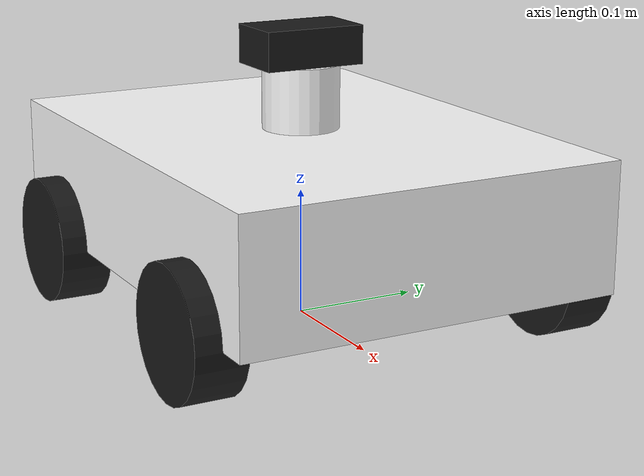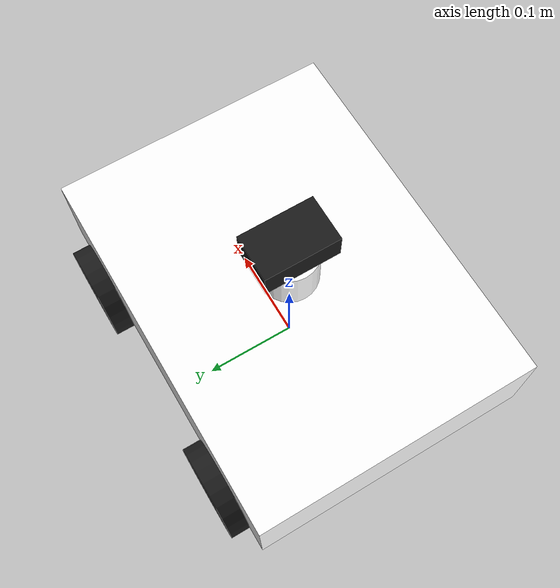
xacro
<?xml version="1.0"?>
<robot xmlns:xacro="http://www.ros.org/wiki/xacro" name="shooter">

  <!-- Parameters -->
  <xacro:arg name="use_sim" default="false"/>
  <xacro:arg name="usb_port" default="USB0"/>
  <xacro:property name="use_sim" value="$(arg use_sim)"/>
  <xacro:property name="usb_port" value="$(arg usb_port)"/>

  <!-- Properties -->
  <xacro:property name="wheel_radius" value="0.05"/>
  <xacro:property name="wheel_width" value="0.04"/>
  <xacro:property name="wheel_separation" value="0.3"/>
  <xacro:property name="wheelbase" value="0.25"/>
  <xacro:property name="base_length" value="0.4"/>
  <xacro:property name="base_width" value="0.3"/>
  <xacro:property name="base_height" value="0.1"/>

  <!-- Materials -->
  <material name="white">
    <color rgba="1 1 1 1"/>
  </material>
  <material name="black">
    <color rgba="0.1 0.1 0.1 1"/>
  </material>

  <!-- Base Link -->
  <link name="base_link"/>

  <link name="base_footprint"/>

  <joint name="base_footprint_joint" type="fixed">
    <parent link="base_footprint"/>
    <child link="base_link"/>
    <origin xyz="0 0 ${wheel_radius}" rpy="0 0 0"/>
  </joint>

  <!-- Chassis -->
  <link name="chassis">
    <visual>
      <geometry>
        <box size="${base_length} ${base_width} ${base_height}"/>
      </geometry>
      <material name="white"/>
    </visual>
    <collision>
      <geometry>
        <box size="${base_length} ${base_width} ${base_height}"/>
      </geometry>
    </collision>
    <inertial>
      <mass value="5.0"/>
      <inertia ixx="0.05" ixy="0" ixz="0" iyy="0.05" iyz="0" izz="0.05"/>
    </inertial>
  </link>

  <joint name="chassis_joint" type="fixed">
    <parent link="base_link"/>
    <child link="chassis"/>
    <origin xyz="0 0 ${base_height/2}" rpy="0 0 0"/>
  </joint>

  <!-- Wheel Macro -->
  <xacro:macro name="wheel" params="name">
    <link name="${name}">
      <visual>
        <geometry>
          <cylinder radius="${wheel_radius}" length="${wheel_width}"/>
        </geometry>
        <material name="black"/>
      </visual>
      <collision>
        <geometry>
          <cylinder radius="${wheel_radius}" length="${wheel_width}"/>
        </geometry>
      </collision>
      <inertial>
        <mass value="0.5"/>
        <inertia ixx="0.001" ixy="0" ixz="0" iyy="0.001" iyz="0" izz="0.001"/>
      </inertial>
    </link>
  </xacro:macro>

  <!-- Front Left Wheel -->
  <xacro:wheel name="front_left_wheel"/>
  <joint name="front_left_wheel_joint" type="continuous">
    <parent link="base_link"/>
    <child link="front_left_wheel"/>
    <origin xyz="${wheelbase/2} ${wheel_separation/2} 0" rpy="${-pi/2} 0 0"/>
    <axis xyz="0 0 1"/>
  </joint>

  <!-- Rear Left Wheel -->
  <xacro:wheel name="rear_left_wheel"/>
  <joint name="rear_left_wheel_joint" type="continuous">
    <parent link="base_link"/>
    <child link="rear_left_wheel"/>
    <origin xyz="${-wheelbase/2} ${wheel_separation/2} 0" rpy="${-pi/2} 0 0"/>
    <axis xyz="0 0 1"/>
  </joint>

  <!-- Front Right Wheel -->
  <xacro:wheel name="front_right_wheel"/>
  <joint name="front_right_wheel_joint" type="continuous">
    <parent link="base_link"/>
    <child link="front_right_wheel"/>
    <origin xyz="${wheelbase/2} ${-wheel_separation/2} 0" rpy="${-pi/2} 0 0"/>
    <axis xyz="0 0 1"/>
  </joint>

  <!-- Rear Right Wheel -->
  <xacro:wheel name="rear_right_wheel"/>
  <joint name="rear_right_wheel_joint" type="continuous">
    <parent link="base_link"/>
    <child link="rear_right_wheel"/>
    <origin xyz="${-wheelbase/2} ${-wheel_separation/2} 0" rpy="${-pi/2} 0 0"/>
    <axis xyz="0 0 1"/>
  </joint>

  <!-- Pan-Tilt Mechanism -->
  <link name="pan_link">
    <visual>
      <geometry>
        <cylinder radius="0.03" length="0.05"/>
      </geometry>
      <material name="white"/>
    </visual>
    <collision>
      <geometry>
        <cylinder radius="0.03" length="0.05"/>
      </geometry>
    </collision>
    <inertial>
      <mass value="0.2"/>
      <inertia ixx="0.0001" ixy="0" ixz="0" iyy="0.0001" iyz="0" izz="0.0001"/>
    </inertial>
  </link>

  <joint name="pan_joint" type="revolute">
    <parent link="chassis"/>
    <child link="pan_link"/>
    <origin xyz="0 0 ${base_height/2 + 0.025}" rpy="0 0 0"/>
    <axis xyz="0 0 1"/>
    <limit lower="${-pi}" upper="${pi}" effort="10" velocity="3.14"/>
  </joint>

  <link name="tilt_link">
    <visual>
      <geometry>
        <box size="0.05 0.08 0.03"/>
      </geometry>
      <material name="black"/>
    </visual>
    <collision>
      <geometry>
        <box size="0.05 0.08 0.03"/>
      </geometry>
    </collision>
    <inertial>
      <mass value="0.1"/>
      <inertia ixx="0.0001" ixy="0" ixz="0" iyy="0.0001" iyz="0" izz="0.0001"/>
    </inertial>
  </link>

  <joint name="tilt_joint" type="revolute">
    <parent link="pan_link"/>
    <child link="tilt_link"/>
    <origin xyz="0 0 0.04" rpy="0 0 0"/>
    <axis xyz="0 1 0"/>
    <limit lower="${-pi/2}" upper="${pi/2}" effort="10" velocity="3.14"/>
  </joint>

  <!-- ros2_control - Real Hardware -->
  <xacro:unless value="${use_sim}">
    <ros2_control name="epos_system" type="system">
      <hardware>
        <plugin>epos/EPOSHardwareInterface</plugin>
        <param name="device_name">EPOS4</param>
        <param name="protocol_stack_name">MAXON SERIAL V2</param>
        <param name="interface_name">USB</param>
        <param name="port_name">${usb_port}</param>
        <param name="baudrate">1000000</param>
        <param name="counts_per_revolution">4096</param>
      </hardware>
      <!-- Velocity control joints (node_id 1, 2) -->
      <joint name="front_right_wheel_joint">
        <param name="node_id">1</param>
        <command_interface name="velocity"/>
        <state_interface name="position"/>
        <state_interface name="velocity"/>
      </joint>
      <joint name="front_left_wheel_joint">
        <param name="node_id">2</param>
        <command_interface name="velocity"/>
        <state_interface name="position"/>
        <state_interface name="velocity"/>
      </joint>
      <!-- Position control joints (node_id 3, 4) -->
      <joint name="pan_joint">
        <param name="node_id">3</param>
        <command_interface name="position"/>
        <state_interface name="position"/>
        <state_interface name="velocity"/>
      </joint>
      <joint name="tilt_joint">
        <param name="node_id">4</param>
        <command_interface name="position"/>
        <state_interface name="position"/>
        <state_interface name="velocity"/>
      </joint>
    </ros2_control>
  </xacro:unless>

  <!-- ros2_control - Gazebo Simulation -->
  <xacro:if value="${use_sim}">
    <ros2_control name="GazeboSystem" type="system">
      <hardware>
        <plugin>gz_ros2_control/GazeboSimSystem</plugin>
      </hardware>
      <joint name="front_left_wheel_joint">
        <command_interface name="velocity"/>
        <state_interface name="position"/>
        <state_interface name="velocity"/>
      </joint>
      <joint name="rear_left_wheel_joint">
        <command_interface name="velocity"/>
        <state_interface name="position"/>
        <state_interface name="velocity"/>
      </joint>
      <joint name="front_right_wheel_joint">
        <command_interface name="velocity"/>
        <state_interface name="position"/>
        <state_interface name="velocity"/>
      </joint>
      <joint name="rear_right_wheel_joint">
        <command_interface name="velocity"/>
        <state_interface name="position"/>
        <state_interface name="velocity"/>
      </joint>
    </ros2_control>

    <!-- Gazebo plugins -->
    <gazebo>
      <plugin filename="gz_ros2_control-system" name="gz_ros2_control::GazeboSimROS2ControlPlugin">
        <parameters>$(find shooter)/config/controllers.yaml</parameters>
      </plugin>
    </gazebo>

    <!-- Wheel friction -->
    <gazebo reference="front_left_wheel">
      <mu1>1.0</mu1>
      <mu2>1.0</mu2>
      <kp>1000000.0</kp>
      <kd>100.0</kd>
    </gazebo>

    <gazebo reference="rear_left_wheel">
      <mu1>1.0</mu1>
      <mu2>1.0</mu2>
      <kp>1000000.0</kp>
      <kd>100.0</kd>
    </gazebo>

    <gazebo reference="front_right_wheel">
      <mu1>1.0</mu1>
      <mu2>1.0</mu2>
      <kp>1000000.0</kp>
      <kd>100.0</kd>
    </gazebo>

    <gazebo reference="rear_right_wheel">
      <mu1>1.0</mu1>
      <mu2>1.0</mu2>
      <kp>1000000.0</kp>
      <kd>100.0</kd>
    </gazebo>
  </xacro:if>

</robot>
